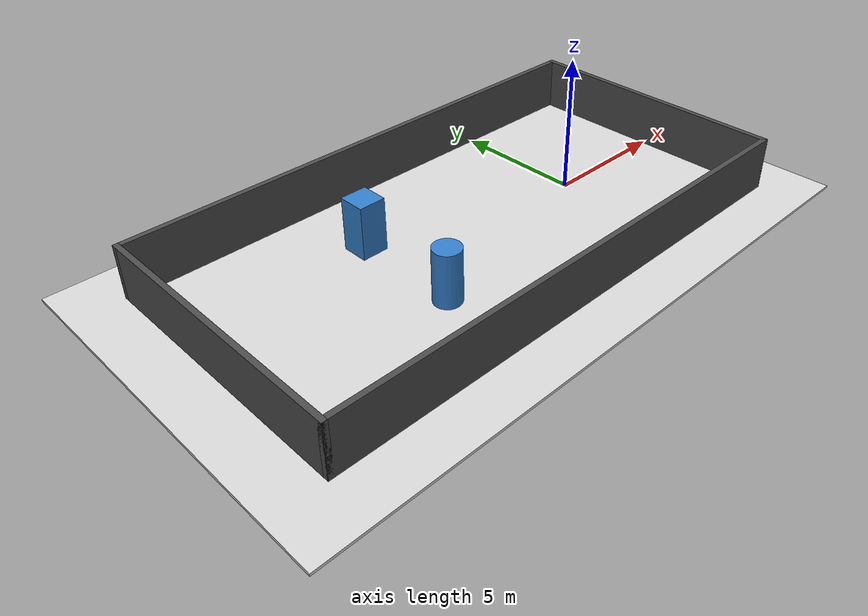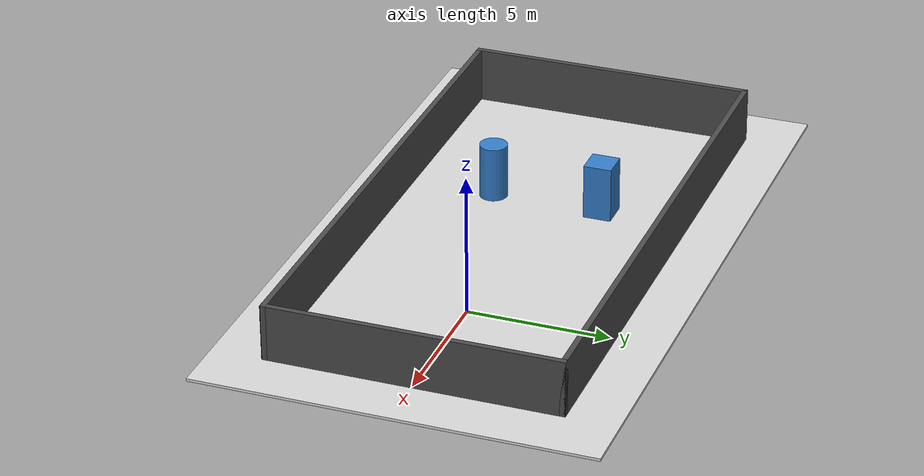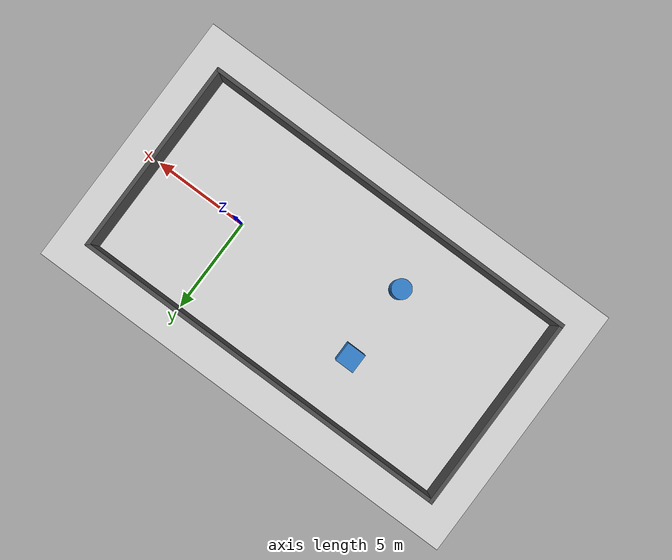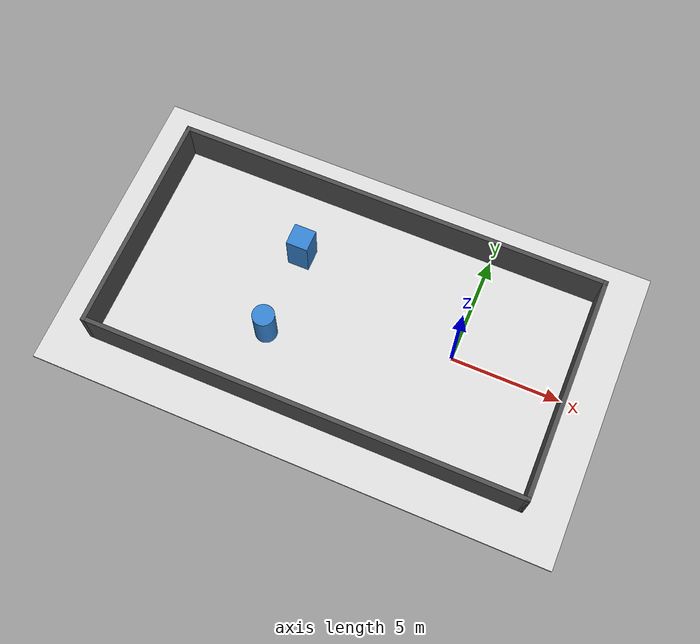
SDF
<sdf version="1.9">
 <world name="arena_rvo2">
  <gravity>0 0 -9.81</gravity>
  <plugin filename="gz-sim-physics-system" name="gz::sim::systems::Physics"/>
  <plugin filename="gz-sim-user-commands-system" name="gz::sim::systems::UserCommands"/>
  <plugin filename="gz-sim-scene-broadcaster-system" name="gz::sim::systems::SceneBroadcaster"/>
  <plugin filename="librvo2_human_system.so" name="custom_corridor::RVO2HumanSystem">
   <human_count>4</human_count>
   <robot_name>burger</robot_name>
   <robot_radius>0.35</robot_radius>
   <human_radius>0.28</human_radius>
   <proxemic_margin_front>1.5</proxemic_margin_front>
   <proxemic_margin_side>0.7</proxemic_margin_side>
   <reaction_latency>0.3</reaction_latency>
   <social_yield_distance>3.5</social_yield_distance>
   <max_speed>0.85</max_speed>
   <time_step>0.004</time_step>
   <neighbor_dist>12.0</neighbor_dist>
   <max_neighbors>10</max_neighbors>
   <time_horizon>4.0</time_horizon>
   <time_horizon_obst>3.0</time_horizon_obst>
   <scenario_topic>/rvo2_human/scenario</scenario_topic>
   <command_topic>/rvo2_human/command</command_topic>
   <ground_truth_topic>/rvo2_human/ground_truth</ground_truth_topic>
   <proxy_z>0.85</proxy_z>
   <visual_z>1.0</visual_z>
   <animation_speed_factor>4.1534</animation_speed_factor>
  </plugin>
  <scene><shadows>false</shadows></scene>
  <physics name="default_physics" type="ode">
   <max_step_size>0.004</max_step_size>
   <real_time_factor>1.0</real_time_factor>
  </physics>
  <plugin filename="gz-sim-sensors-system" name="gz::sim::systems::Sensors">
   <render_engine>ogre2</render_engine>
  </plugin>
  <plugin filename="gz-sim-imu-system" name="gz::sim::systems::Imu"/>
  <light type="directional" name="sun">
   <cast_shadows>false</cast_shadows>
   <pose>0 0 10 0 0 0</pose>
   <diffuse>0.8 0.8 0.8 1</diffuse>
   <specular>0.2 0.2 0.2 1</specular>
   <direction>-0.5 0.1 -0.9</direction>
  </light>
  <model name="ground">
   <static>true</static>
   <link name="link">
    <collision name="collision"><geometry><box><size>24.0 14.0 0.1</size></box></geometry></collision>
    <visual name="visual">
     <geometry><box><size>24.0 14.0 0.1</size></box></geometry>
     <material><ambient>0.85 0.85 0.85 1</ambient><diffuse>0.85 0.85 0.85 1</diffuse></material>
    </visual>
   </link>
   <pose>-5.0 0.0 -0.05 0 0 0</pose>
  </model>
  <model name="wall_west">
   <static>true</static>
   <link name="link">
    <collision name="collision"><geometry><box><size>0.2 10.4 2.0</size></box></geometry></collision>
    <visual name="visual">
     <geometry><box><size>0.2 10.4 2.0</size></box></geometry>
     <material><ambient>0.3 0.3 0.3 1</ambient><diffuse>0.3 0.3 0.3 1</diffuse></material>
    </visual>
   </link>
   <pose>-15.0 0.0 1.0 0 0 0</pose>
  </model>
  <model name="wall_east">
   <static>true</static>
   <link name="link">
    <collision name="collision"><geometry><box><size>0.2 10.4 2.0</size></box></geometry></collision>
    <visual name="visual">
     <geometry><box><size>0.2 10.4 2.0</size></box></geometry>
     <material><ambient>0.3 0.3 0.3 1</ambient><diffuse>0.3 0.3 0.3 1</diffuse></material>
    </visual>
   </link>
   <pose>5.0 0.0 1.0 0 0 0</pose>
  </model>
  <model name="wall_south">
   <static>true</static>
   <link name="link">
    <collision name="collision"><geometry><box><size>20.2 0.2 2.0</size></box></geometry></collision>
    <visual name="visual">
     <geometry><box><size>20.2 0.2 2.0</size></box></geometry>
     <material><ambient>0.3 0.3 0.3 1</ambient><diffuse>0.3 0.3 0.3 1</diffuse></material>
    </visual>
   </link>
   <pose>-5.0 -5.1 1.0 0 0 0</pose>
  </model>
  <model name="wall_north">
   <static>true</static>
   <link name="link">
    <collision name="collision"><geometry><box><size>20.2 0.2 2.0</size></box></geometry></collision>
    <visual name="visual">
     <geometry><box><size>20.2 0.2 2.0</size></box></geometry>
     <material><ambient>0.3 0.3 0.3 1</ambient><diffuse>0.3 0.3 0.3 1</diffuse></material>
    </visual>
   </link>
   <pose>-5.0 5.1 1.0 0 0 0</pose>
  </model>
  <model name="static_box_A">
   <static>true</static>
   <link name="link">
    <collision name="collision"><geometry><box><size>1.0 1.0 2.0</size></box></geometry></collision>
    <visual name="visual">
     <geometry><box><size>1.0 1.0 2.0</size></box></geometry>
     <material><ambient>0.2 0.5 0.8 1</ambient><diffuse>0.2 0.5 0.8 1</diffuse></material>
    </visual>
   </link>
   <pose>-8.0 2.0 1.0 0 0 0</pose>
  </model>
  <model name="static_cylinder_B">
   <static>true</static>
   <link name="link">
    <collision name="collision">
     <geometry><cylinder><radius>0.5</radius><length>2.0</length></cylinder></geometry>
    </collision>
    <visual name="visual">
     <geometry><cylinder><radius>0.5</radius><length>2.0</length></cylinder></geometry>
     <material><ambient>0.2 0.5 0.8 1</ambient><diffuse>0.2 0.5 0.8 1</diffuse></material>
    </visual>
   </link>
   <pose>-8.0 -2.0 1.0 0 0 0</pose>
  </model>
  <model name="human_01_proxy">
   <pose>4.0 0.0 0.85 0 0 3.14159</pose>
   <link name="link">
    <gravity>false</gravity>
    <kinematic>true</kinematic>
    <collision name="collision">
     <geometry><cylinder><radius>0.28</radius><length>1.70</length></cylinder></geometry>
    </collision>
    <visual name="visual">
     <geometry><cylinder><radius>0.001</radius><length>0.001</length></cylinder></geometry>
     <transparency>1.0</transparency>
    </visual>
   </link>
  </model>
  <model name="human_02_proxy">
   <pose>-8.0 -1.2 0.80 0 0 0.196</pose>
   <link name="link">
    <gravity>false</gravity>
    <kinematic>true</kinematic>
    <collision name="collision">
     <geometry><cylinder><radius>0.26</radius><length>1.60</length></cylinder></geometry>
    </collision>
    <visual name="visual">
     <geometry><cylinder><radius>0.001</radius><length>0.001</length></cylinder></geometry>
     <transparency>1.0</transparency>
    </visual>
   </link>
  </model>
  <model name="human_03_proxy">
   <pose>-3.0 -3.0 0.875 0 0 1.5708</pose>
   <link name="link">
    <gravity>false</gravity>
    <kinematic>true</kinematic>
    <collision name="collision">
     <geometry><cylinder><radius>0.29</radius><length>1.75</length></cylinder></geometry>
    </collision>
    <visual name="visual">
     <geometry><cylinder><radius>0.001</radius><length>0.001</length></cylinder></geometry>
     <transparency>1.0</transparency>
    </visual>
   </link>
  </model>
  <model name="human_04_proxy">
   <pose>1.0 2.5 0.85 0 0 -2.63</pose>
   <link name="link">
    <gravity>false</gravity>
    <kinematic>true</kinematic>
    <collision name="collision">
     <geometry><cylinder><radius>0.28</radius><length>1.70</length></cylinder></geometry>
    </collision>
    <visual name="visual">
     <geometry><cylinder><radius>0.001</radius><length>0.001</length></cylinder></geometry>
     <transparency>1.0</transparency>
    </visual>
   </link>
  </model>
 </world>
</sdf>
